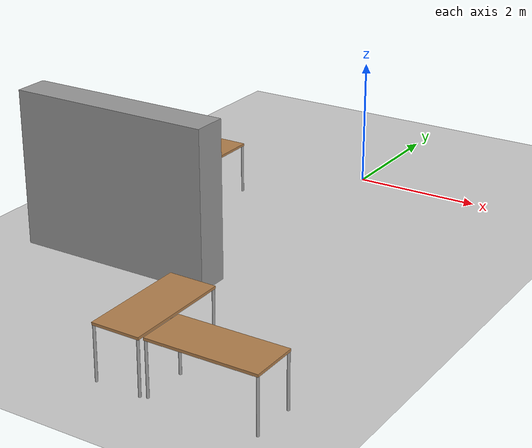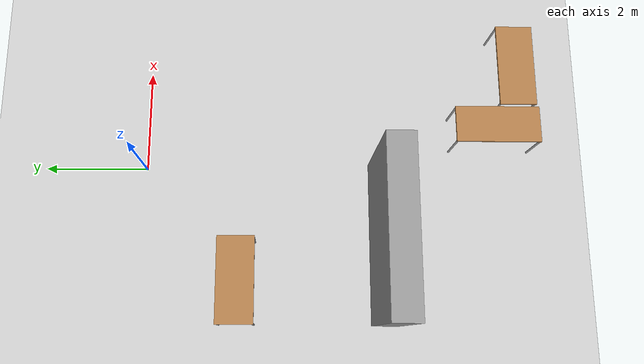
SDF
<sdf version="1.6">
 <world name="Clf Furnished">
  <model name="ground_plane">
   <static>1</static>
   <link name="link">
    <collision name="collision">
     <geometry><plane><normal>0 0 1</normal><size>100 100</size></plane></geometry>
     <surface><friction><ode><mu>100</mu><mu2>50</mu2></ode></friction></surface>
    </collision>
    <visual name="visual">
     <cast_shadows>0</cast_shadows>
     <geometry><plane><normal>0 0 1</normal><size>100 100</size></plane></geometry>
     <material>
      <script><uri>file://media/materials/scripts/gazebo.material</uri><name>Gazebo/Grey</name></script>
     </material>
    </visual>
   </link>
  </model>
  <model name="clf_cabinet_1">
   <link name="link">
    <inertial>
     <mass>1</mass>
     <inertia>
      <ixx>0.166667</ixx>
      <ixy>0</ixy>
      <ixz>0</ixz>
      <iyy>0.166667</iyy>
      <iyz>0</iyz>
      <izz>0.166667</izz>
     </inertia>
    </inertial>
    <visual name="visual">
     <geometry><box><size>3.13719 0.522097 2.4</size></box></geometry>
     <material>
      <script><name>Gazebo/Grey</name><uri>file://media/materials/scripts/gazebo.material</uri></script>
      <ambient>0.3 0.3 0.3 1</ambient>
      <diffuse>0.7 0.7 0.7 1</diffuse>
      <specular>0.01 0.01 0.01 1</specular>
      <emissive>0 0 0 1</emissive>
     </material>
    </visual>
    <collision name="collision">
     <geometry><box><size>3.13719 0.522097 2.4</size></box></geometry>
     <surface>
      <friction>
       <ode><mu>1</mu><mu2>1</mu2><fdir1>0 0 0</fdir1><slip1>0</slip1><slip2>0</slip2></ode>
       <torsional>
        <coefficient>1</coefficient>
        <patch_radius>0</patch_radius>
        <surface_radius>0</surface_radius>
        <use_patch_radius>1</use_patch_radius>
        <ode><slip>0</slip></ode>
       </torsional>
      </friction>
      <bounce><restitution_coefficient>0</restitution_coefficient><threshold>1e+06</threshold></bounce>
      <contact>
       <collide_without_contact>0</collide_without_contact>
       <collide_without_contact_bitmask>1</collide_without_contact_bitmask>
       <collide_bitmask>1</collide_bitmask>
       <ode>
        <soft_cfm>0</soft_cfm>
        <soft_erp>0.2</soft_erp>
        <kp>1e+13</kp>
        <kd>1</kd>
        <max_vel>0.01</max_vel>
        <min_depth>0</min_depth>
       </ode>
       <bullet>
        <split_impulse>1</split_impulse>
        <split_impulse_penetration_threshold>-0.01</split_impulse_penetration_threshold>
        <soft_cfm>0</soft_cfm>
        <soft_erp>0.2</soft_erp>
        <kp>1e+13</kp>
        <kd>1</kd>
       </bullet>
      </contact>
     </surface>
    </collision>
   </link>
   <static>0</static>
   <pose>-1.42949 -4.63345 1.19998 -1e-06 -1.4e-05 0.000439</pose>
  </model>
  <model name="table_mod">
   <link name="link">
    <inertial>
     <inertia><ixx>1</ixx><ixy>0</ixy><ixz>0</ixz><iyy>1</iyy><iyz>0</iyz><izz>1</izz></inertia>
     <mass>1</mass>
    </inertial>
    <visual name="visual1">
     <pose>0 0 0.8 0 -0 0</pose>
     <geometry><box><size>1.6 0.7 0.04</size></box></geometry>
     <material>
      <script><uri>file://media/materials/scripts/gazebo.material</uri><name>Gazebo/Wood</name></script>
      <ambient>1 1 1 1</ambient>
      <diffuse>1 1 1 1</diffuse>
      <specular>0.2 0.2 0.2 1</specular>
      <emissive>0 0 0 1</emissive>
     </material>
    </visual>
    <visual name="front_right_leg">
     <pose>0.78 -0.33 0.4 0 -0 0</pose>
     <geometry><cylinder><radius>0.02</radius><length>0.8</length></cylinder></geometry>
     <material>
      <script><uri>file://media/materials/scripts/gazebo.material</uri><name>Gazebo/Grey</name></script>
      <ambient>0.3 0.3 0.3 1</ambient>
      <diffuse>0.7 0.7 0.7 1</diffuse>
      <specular>0.01 0.01 0.01 1</specular>
      <emissive>0 0 0 1</emissive>
     </material>
    </visual>
    <visual name="front_left_leg">
     <pose>0.78 0.33 0.4 0 -0 0</pose>
     <geometry><cylinder><radius>0.02</radius><length>0.8</length></cylinder></geometry>
     <material>
      <script><uri>file://media/materials/scripts/gazebo.material</uri><name>Gazebo/Grey</name></script>
      <ambient>0.3 0.3 0.3 1</ambient>
      <diffuse>0.7 0.7 0.7 1</diffuse>
      <specular>0.01 0.01 0.01 1</specular>
      <emissive>0 0 0 1</emissive>
     </material>
    </visual>
    <visual name="back_left_leg">
     <pose>-0.78 0.33 0.4 0 -0 0</pose>
     <geometry><cylinder><radius>0.02</radius><length>0.8</length></cylinder></geometry>
     <material>
      <script><uri>file://media/materials/scripts/gazebo.material</uri><name>Gazebo/Grey</name></script>
      <ambient>0.3 0.3 0.3 1</ambient>
      <diffuse>0.7 0.7 0.7 1</diffuse>
      <specular>0.01 0.01 0.01 1</specular>
      <emissive>0 0 0 1</emissive>
     </material>
    </visual>
    <visual name="back_right_leg">
     <pose>-0.78 -0.33 0.4 0 -0 0</pose>
     <geometry><cylinder><radius>0.02</radius><length>0.8</length></cylinder></geometry>
     <material>
      <script><uri>file://media/materials/scripts/gazebo.material</uri><name>Gazebo/Grey</name></script>
      <ambient>0.3 0.3 0.3 1</ambient>
      <diffuse>0.7 0.7 0.7 1</diffuse>
      <specular>0.01 0.01 0.01 1</specular>
      <emissive>0 0 0 1</emissive>
     </material>
    </visual>
    <collision name="surface">
     <pose>0 0 0.8 0 -0 0</pose>
     <geometry><box><size>1.6 0.7 0.03</size></box></geometry>
     <surface>
      <friction>
       <ode><mu>0.6</mu><mu2>0.6</mu2><fdir1>0 0 0</fdir1><slip1>0</slip1><slip2>0</slip2></ode>
       <torsional>
        <coefficient>1</coefficient>
        <patch_radius>0</patch_radius>
        <surface_radius>0</surface_radius>
        <use_patch_radius>1</use_patch_radius>
        <ode><slip>0</slip></ode>
       </torsional>
      </friction>
      <bounce><restitution_coefficient>0</restitution_coefficient><threshold>1e+06</threshold></bounce>
      <contact>
       <collide_without_contact>0</collide_without_contact>
       <collide_without_contact_bitmask>1</collide_without_contact_bitmask>
       <collide_bitmask>1</collide_bitmask>
       <ode>
        <soft_cfm>0</soft_cfm>
        <soft_erp>0.2</soft_erp>
        <kp>1e+13</kp>
        <kd>1</kd>
        <max_vel>0.01</max_vel>
        <min_depth>0</min_depth>
       </ode>
       <bullet>
        <split_impulse>1</split_impulse>
        <split_impulse_penetration_threshold>-0.01</split_impulse_penetration_threshold>
        <soft_cfm>0</soft_cfm>
        <soft_erp>0.2</soft_erp>
        <kp>1e+13</kp>
        <kd>1</kd>
       </bullet>
      </contact>
     </surface>
    </collision>
    <collision name="front_left_leg">
     <pose>0.78 0.33 0.4 0 -0 0</pose>
     <geometry><cylinder><radius>0.02</radius><length>0.8</length></cylinder></geometry>
     <surface>
      <friction>
       <ode><mu>1</mu><mu2>1</mu2><fdir1>0 0 0</fdir1><slip1>0</slip1><slip2>0</slip2></ode>
       <torsional>
        <coefficient>1</coefficient>
        <patch_radius>0</patch_radius>
        <surface_radius>0</surface_radius>
        <use_patch_radius>1</use_patch_radius>
        <ode><slip>0</slip></ode>
       </torsional>
      </friction>
      <bounce><restitution_coefficient>0</restitution_coefficient><threshold>1e+06</threshold></bounce>
      <contact>
       <collide_without_contact>0</collide_without_contact>
       <collide_without_contact_bitmask>1</collide_without_contact_bitmask>
       <collide_bitmask>1</collide_bitmask>
       <ode>
        <soft_cfm>0</soft_cfm>
        <soft_erp>0.2</soft_erp>
        <kp>1e+13</kp>
        <kd>1</kd>
        <max_vel>0.01</max_vel>
        <min_depth>0</min_depth>
       </ode>
       <bullet>
        <split_impulse>1</split_impulse>
        <split_impulse_penetration_threshold>-0.01</split_impulse_penetration_threshold>
        <soft_cfm>0</soft_cfm>
        <soft_erp>0.2</soft_erp>
        <kp>1e+13</kp>
        <kd>1</kd>
       </bullet>
      </contact>
     </surface>
    </collision>
    <collision name="front_right_leg">
     <pose>0.78 -0.33 0.4 0 -0 0</pose>
     <geometry><cylinder><radius>0.02</radius><length>0.8</length></cylinder></geometry>
     <surface>
      <friction>
       <ode><mu>1</mu><mu2>1</mu2><fdir1>0 0 0</fdir1><slip1>0</slip1><slip2>0</slip2></ode>
       <torsional>
        <coefficient>1</coefficient>
        <patch_radius>0</patch_radius>
        <surface_radius>0</surface_radius>
        <use_patch_radius>1</use_patch_radius>
        <ode><slip>0</slip></ode>
       </torsional>
      </friction>
      <bounce><restitution_coefficient>0</restitution_coefficient><threshold>1e+06</threshold></bounce>
      <contact>
       <collide_without_contact>0</collide_without_contact>
       <collide_without_contact_bitmask>1</collide_without_contact_bitmask>
       <collide_bitmask>1</collide_bitmask>
       <ode>
        <soft_cfm>0</soft_cfm>
        <soft_erp>0.2</soft_erp>
        <kp>1e+13</kp>
        <kd>1</kd>
        <max_vel>0.01</max_vel>
        <min_depth>0</min_depth>
       </ode>
       <bullet>
        <split_impulse>1</split_impulse>
        <split_impulse_penetration_threshold>-0.01</split_impulse_penetration_threshold>
        <soft_cfm>0</soft_cfm>
        <soft_erp>0.2</soft_erp>
        <kp>1e+13</kp>
        <kd>1</kd>
       </bullet>
      </contact>
     </surface>
    </collision>
    <collision name="back_right_leg">
     <pose>-0.78 -0.33 0.4 0 -0 0</pose>
     <geometry><cylinder><radius>0.02</radius><length>0.8</length></cylinder></geometry>
     <surface>
      <friction>
       <ode><mu>1</mu><mu2>1</mu2><fdir1>0 0 0</fdir1><slip1>0</slip1><slip2>0</slip2></ode>
       <torsional>
        <coefficient>1</coefficient>
        <patch_radius>0</patch_radius>
        <surface_radius>0</surface_radius>
        <use_patch_radius>1</use_patch_radius>
        <ode><slip>0</slip></ode>
       </torsional>
      </friction>
      <bounce><restitution_coefficient>0</restitution_coefficient><threshold>1e+06</threshold></bounce>
      <contact>
       <collide_without_contact>0</collide_without_contact>
       <collide_without_contact_bitmask>1</collide_without_contact_bitmask>
       <collide_bitmask>1</collide_bitmask>
       <ode>
        <soft_cfm>0</soft_cfm>
        <soft_erp>0.2</soft_erp>
        <kp>1e+13</kp>
        <kd>1</kd>
        <max_vel>0.01</max_vel>
        <min_depth>0</min_depth>
       </ode>
       <bullet>
        <split_impulse>1</split_impulse>
        <split_impulse_penetration_threshold>-0.01</split_impulse_penetration_threshold>
        <soft_cfm>0</soft_cfm>
        <soft_erp>0.2</soft_erp>
        <kp>1e+13</kp>
        <kd>1</kd>
       </bullet>
      </contact>
     </surface>
    </collision>
    <collision name="back_left_leg">
     <pose>-0.78 0.33 0.4 0 -0 0</pose>
     <geometry><cylinder><radius>0.02</radius><length>0.8</length></cylinder></geometry>
     <surface>
      <friction>
       <ode><mu>1</mu><mu2>1</mu2><fdir1>0 0 0</fdir1><slip1>0</slip1><slip2>0</slip2></ode>
       <torsional>
        <coefficient>1</coefficient>
        <patch_radius>0</patch_radius>
        <surface_radius>0</surface_radius>
        <use_patch_radius>1</use_patch_radius>
        <ode><slip>0</slip></ode>
       </torsional>
      </friction>
      <bounce><restitution_coefficient>0</restitution_coefficient><threshold>1e+06</threshold></bounce>
      <contact>
       <collide_without_contact>0</collide_without_contact>
       <collide_without_contact_bitmask>1</collide_without_contact_bitmask>
       <collide_bitmask>1</collide_bitmask>
       <ode>
        <soft_cfm>0</soft_cfm>
        <soft_erp>0.2</soft_erp>
        <kp>1e+13</kp>
        <kd>1</kd>
        <max_vel>0.01</max_vel>
        <min_depth>0</min_depth>
       </ode>
       <bullet>
        <split_impulse>1</split_impulse>
        <split_impulse_penetration_threshold>-0.01</split_impulse_penetration_threshold>
        <soft_cfm>0</soft_cfm>
        <soft_erp>0.2</soft_erp>
        <kp>1e+13</kp>
        <kd>1</kd>
       </bullet>
      </contact>
     </surface>
    </collision>
   </link>
   <static>0</static>
   <pose>-2.20978 -1.82153 -2.9e-05 1e-06 1e-06 -2e-06</pose>
  </model>
  <model name="table_mod_5">
   <link name="link">
    <inertial>
     <inertia><ixx>1</ixx><ixy>0</ixy><ixz>0</ixz><iyy>1</iyy><iyz>0</iyz><izz>1</izz></inertia>
     <mass>1</mass>
    </inertial>
    <visual name="visual1">
     <pose>0 0 0.8 0 -0 0</pose>
     <geometry><box><size>1.6 0.7 0.04</size></box></geometry>
     <material>
      <script><uri>file://media/materials/scripts/gazebo.material</uri><name>Gazebo/Wood</name></script>
      <ambient>1 1 1 1</ambient>
      <diffuse>1 1 1 1</diffuse>
      <specular>0.2 0.2 0.2 1</specular>
      <emissive>0 0 0 1</emissive>
     </material>
    </visual>
    <visual name="front_right_leg">
     <pose>0.78 -0.33 0.4 0 -0 0</pose>
     <geometry><cylinder><radius>0.02</radius><length>0.8</length></cylinder></geometry>
     <material>
      <script><uri>file://media/materials/scripts/gazebo.material</uri><name>Gazebo/Grey</name></script>
      <ambient>0.3 0.3 0.3 1</ambient>
      <diffuse>0.7 0.7 0.7 1</diffuse>
      <specular>0.01 0.01 0.01 1</specular>
      <emissive>0 0 0 1</emissive>
     </material>
    </visual>
    <visual name="front_left_leg">
     <pose>0.78 0.33 0.4 0 -0 0</pose>
     <geometry><cylinder><radius>0.02</radius><length>0.8</length></cylinder></geometry>
     <material>
      <script><uri>file://media/materials/scripts/gazebo.material</uri><name>Gazebo/Grey</name></script>
      <ambient>0.3 0.3 0.3 1</ambient>
      <diffuse>0.7 0.7 0.7 1</diffuse>
      <specular>0.01 0.01 0.01 1</specular>
      <emissive>0 0 0 1</emissive>
     </material>
    </visual>
    <visual name="back_left_leg">
     <pose>-0.78 0.33 0.4 0 -0 0</pose>
     <geometry><cylinder><radius>0.02</radius><length>0.8</length></cylinder></geometry>
     <material>
      <script><uri>file://media/materials/scripts/gazebo.material</uri><name>Gazebo/Grey</name></script>
      <ambient>0.3 0.3 0.3 1</ambient>
      <diffuse>0.7 0.7 0.7 1</diffuse>
      <specular>0.01 0.01 0.01 1</specular>
      <emissive>0 0 0 1</emissive>
     </material>
    </visual>
    <visual name="back_right_leg">
     <pose>-0.78 -0.33 0.4 0 -0 0</pose>
     <geometry><cylinder><radius>0.02</radius><length>0.8</length></cylinder></geometry>
     <material>
      <script><uri>file://media/materials/scripts/gazebo.material</uri><name>Gazebo/Grey</name></script>
      <ambient>0.3 0.3 0.3 1</ambient>
      <diffuse>0.7 0.7 0.7 1</diffuse>
      <specular>0.01 0.01 0.01 1</specular>
      <emissive>0 0 0 1</emissive>
     </material>
    </visual>
    <collision name="surface">
     <pose>0 0 0.8 0 -0 0</pose>
     <geometry><box><size>1.6 0.7 0.03</size></box></geometry>
     <surface>
      <friction>
       <ode><mu>0.6</mu><mu2>0.6</mu2><fdir1>0 0 0</fdir1><slip1>0</slip1><slip2>0</slip2></ode>
       <torsional>
        <coefficient>1</coefficient>
        <patch_radius>0</patch_radius>
        <surface_radius>0</surface_radius>
        <use_patch_radius>1</use_patch_radius>
        <ode><slip>0</slip></ode>
       </torsional>
      </friction>
      <bounce><restitution_coefficient>0</restitution_coefficient><threshold>1e+06</threshold></bounce>
      <contact>
       <collide_without_contact>0</collide_without_contact>
       <collide_without_contact_bitmask>1</collide_without_contact_bitmask>
       <collide_bitmask>1</collide_bitmask>
       <ode>
        <soft_cfm>0</soft_cfm>
        <soft_erp>0.2</soft_erp>
        <kp>1e+13</kp>
        <kd>1</kd>
        <max_vel>0.01</max_vel>
        <min_depth>0</min_depth>
       </ode>
       <bullet>
        <split_impulse>1</split_impulse>
        <split_impulse_penetration_threshold>-0.01</split_impulse_penetration_threshold>
        <soft_cfm>0</soft_cfm>
        <soft_erp>0.2</soft_erp>
        <kp>1e+13</kp>
        <kd>1</kd>
       </bullet>
      </contact>
     </surface>
    </collision>
    <collision name="front_left_leg">
     <pose>0.78 0.33 0.4 0 -0 0</pose>
     <geometry><cylinder><radius>0.02</radius><length>0.8</length></cylinder></geometry>
     <surface>
      <friction>
       <ode><mu>1</mu><mu2>1</mu2><fdir1>0 0 0</fdir1><slip1>0</slip1><slip2>0</slip2></ode>
       <torsional>
        <coefficient>1</coefficient>
        <patch_radius>0</patch_radius>
        <surface_radius>0</surface_radius>
        <use_patch_radius>1</use_patch_radius>
        <ode><slip>0</slip></ode>
       </torsional>
      </friction>
      <bounce><restitution_coefficient>0</restitution_coefficient><threshold>1e+06</threshold></bounce>
      <contact>
       <collide_without_contact>0</collide_without_contact>
       <collide_without_contact_bitmask>1</collide_without_contact_bitmask>
       <collide_bitmask>1</collide_bitmask>
       <ode>
        <soft_cfm>0</soft_cfm>
        <soft_erp>0.2</soft_erp>
        <kp>1e+13</kp>
        <kd>1</kd>
        <max_vel>0.01</max_vel>
        <min_depth>0</min_depth>
       </ode>
       <bullet>
        <split_impulse>1</split_impulse>
        <split_impulse_penetration_threshold>-0.01</split_impulse_penetration_threshold>
        <soft_cfm>0</soft_cfm>
        <soft_erp>0.2</soft_erp>
        <kp>1e+13</kp>
        <kd>1</kd>
       </bullet>
      </contact>
     </surface>
    </collision>
    <collision name="front_right_leg">
     <pose>0.78 -0.33 0.4 0 -0 0</pose>
     <geometry><cylinder><radius>0.02</radius><length>0.8</length></cylinder></geometry>
     <surface>
      <friction>
       <ode><mu>1</mu><mu2>1</mu2><fdir1>0 0 0</fdir1><slip1>0</slip1><slip2>0</slip2></ode>
       <torsional>
        <coefficient>1</coefficient>
        <patch_radius>0</patch_radius>
        <surface_radius>0</surface_radius>
        <use_patch_radius>1</use_patch_radius>
        <ode><slip>0</slip></ode>
       </torsional>
      </friction>
      <bounce><restitution_coefficient>0</restitution_coefficient><threshold>1e+06</threshold></bounce>
      <contact>
       <collide_without_contact>0</collide_without_contact>
       <collide_without_contact_bitmask>1</collide_without_contact_bitmask>
       <collide_bitmask>1</collide_bitmask>
       <ode>
        <soft_cfm>0</soft_cfm>
        <soft_erp>0.2</soft_erp>
        <kp>1e+13</kp>
        <kd>1</kd>
        <max_vel>0.01</max_vel>
        <min_depth>0</min_depth>
       </ode>
       <bullet>
        <split_impulse>1</split_impulse>
        <split_impulse_penetration_threshold>-0.01</split_impulse_penetration_threshold>
        <soft_cfm>0</soft_cfm>
        <soft_erp>0.2</soft_erp>
        <kp>1e+13</kp>
        <kd>1</kd>
       </bullet>
      </contact>
     </surface>
    </collision>
    <collision name="back_right_leg">
     <pose>-0.78 -0.33 0.4 0 -0 0</pose>
     <geometry><cylinder><radius>0.02</radius><length>0.8</length></cylinder></geometry>
     <surface>
      <friction>
       <ode><mu>1</mu><mu2>1</mu2><fdir1>0 0 0</fdir1><slip1>0</slip1><slip2>0</slip2></ode>
       <torsional>
        <coefficient>1</coefficient>
        <patch_radius>0</patch_radius>
        <surface_radius>0</surface_radius>
        <use_patch_radius>1</use_patch_radius>
        <ode><slip>0</slip></ode>
       </torsional>
      </friction>
      <bounce><restitution_coefficient>0</restitution_coefficient><threshold>1e+06</threshold></bounce>
      <contact>
       <collide_without_contact>0</collide_without_contact>
       <collide_without_contact_bitmask>1</collide_without_contact_bitmask>
       <collide_bitmask>1</collide_bitmask>
       <ode>
        <soft_cfm>0</soft_cfm>
        <soft_erp>0.2</soft_erp>
        <kp>1e+13</kp>
        <kd>1</kd>
        <max_vel>0.01</max_vel>
        <min_depth>0</min_depth>
       </ode>
       <bullet>
        <split_impulse>1</split_impulse>
        <split_impulse_penetration_threshold>-0.01</split_impulse_penetration_threshold>
        <soft_cfm>0</soft_cfm>
        <soft_erp>0.2</soft_erp>
        <kp>1e+13</kp>
        <kd>1</kd>
       </bullet>
      </contact>
     </surface>
    </collision>
    <collision name="back_left_leg">
     <pose>-0.78 0.33 0.4 0 -0 0</pose>
     <geometry><cylinder><radius>0.02</radius><length>0.8</length></cylinder></geometry>
     <surface>
      <friction>
       <ode><mu>1</mu><mu2>1</mu2><fdir1>0 0 0</fdir1><slip1>0</slip1><slip2>0</slip2></ode>
       <torsional>
        <coefficient>1</coefficient>
        <patch_radius>0</patch_radius>
        <surface_radius>0</surface_radius>
        <use_patch_radius>1</use_patch_radius>
        <ode><slip>0</slip></ode>
       </torsional>
      </friction>
      <bounce><restitution_coefficient>0</restitution_coefficient><threshold>1e+06</threshold></bounce>
      <contact>
       <collide_without_contact>0</collide_without_contact>
       <collide_without_contact_bitmask>1</collide_without_contact_bitmask>
       <collide_bitmask>1</collide_bitmask>
       <ode>
        <soft_cfm>0</soft_cfm>
        <soft_erp>0.2</soft_erp>
        <kp>1e+13</kp>
        <kd>1</kd>
        <max_vel>0.01</max_vel>
        <min_depth>0</min_depth>
       </ode>
       <bullet>
        <split_impulse>1</split_impulse>
        <split_impulse_penetration_threshold>-0.01</split_impulse_penetration_threshold>
        <soft_cfm>0</soft_cfm>
        <soft_erp>0.2</soft_erp>
        <kp>1e+13</kp>
        <kd>1</kd>
       </bullet>
      </contact>
     </surface>
    </collision>
   </link>
   <static>0</static>
   <pose>1.96446 -7.18244 -2e-06 1e-06 1e-06 6.4e-05</pose>
  </model>
  <model name="table_mod_7">
   <link name="link">
    <inertial>
     <inertia><ixx>1</ixx><ixy>0</ixy><ixz>0</ixz><iyy>1</iyy><iyz>0</iyz><izz>1</izz></inertia>
     <mass>1</mass>
    </inertial>
    <visual name="visual1">
     <pose>0 0 0.8 0 -0 0</pose>
     <geometry><box><size>1.6 0.7 0.04</size></box></geometry>
     <material>
      <script><uri>file://media/materials/scripts/gazebo.material</uri><name>Gazebo/Wood</name></script>
      <ambient>1 1 1 1</ambient>
      <diffuse>1 1 1 1</diffuse>
      <specular>0.2 0.2 0.2 1</specular>
      <emissive>0 0 0 1</emissive>
     </material>
    </visual>
    <visual name="front_right_leg">
     <pose>0.78 -0.33 0.4 0 -0 0</pose>
     <geometry><cylinder><radius>0.02</radius><length>0.8</length></cylinder></geometry>
     <material>
      <script><uri>file://media/materials/scripts/gazebo.material</uri><name>Gazebo/Grey</name></script>
      <ambient>0.3 0.3 0.3 1</ambient>
      <diffuse>0.7 0.7 0.7 1</diffuse>
      <specular>0.01 0.01 0.01 1</specular>
      <emissive>0 0 0 1</emissive>
     </material>
    </visual>
    <visual name="front_left_leg">
     <pose>0.78 0.33 0.4 0 -0 0</pose>
     <geometry><cylinder><radius>0.02</radius><length>0.8</length></cylinder></geometry>
     <material>
      <script><uri>file://media/materials/scripts/gazebo.material</uri><name>Gazebo/Grey</name></script>
      <ambient>0.3 0.3 0.3 1</ambient>
      <diffuse>0.7 0.7 0.7 1</diffuse>
      <specular>0.01 0.01 0.01 1</specular>
      <emissive>0 0 0 1</emissive>
     </material>
    </visual>
    <visual name="back_left_leg">
     <pose>-0.78 0.33 0.4 0 -0 0</pose>
     <geometry><cylinder><radius>0.02</radius><length>0.8</length></cylinder></geometry>
     <material>
      <script><uri>file://media/materials/scripts/gazebo.material</uri><name>Gazebo/Grey</name></script>
      <ambient>0.3 0.3 0.3 1</ambient>
      <diffuse>0.7 0.7 0.7 1</diffuse>
      <specular>0.01 0.01 0.01 1</specular>
      <emissive>0 0 0 1</emissive>
     </material>
    </visual>
    <visual name="back_right_leg">
     <pose>-0.78 -0.33 0.4 0 -0 0</pose>
     <geometry><cylinder><radius>0.02</radius><length>0.8</length></cylinder></geometry>
     <material>
      <script><uri>file://media/materials/scripts/gazebo.material</uri><name>Gazebo/Grey</name></script>
      <ambient>0.3 0.3 0.3 1</ambient>
      <diffuse>0.7 0.7 0.7 1</diffuse>
      <specular>0.01 0.01 0.01 1</specular>
      <emissive>0 0 0 1</emissive>
     </material>
    </visual>
    <collision name="surface">
     <pose>0 0 0.8 0 -0 0</pose>
     <geometry><box><size>1.6 0.7 0.03</size></box></geometry>
     <surface>
      <friction>
       <ode><mu>0.6</mu><mu2>0.6</mu2><fdir1>0 0 0</fdir1><slip1>0</slip1><slip2>0</slip2></ode>
       <torsional>
        <coefficient>1</coefficient>
        <patch_radius>0</patch_radius>
        <surface_radius>0</surface_radius>
        <use_patch_radius>1</use_patch_radius>
        <ode><slip>0</slip></ode>
       </torsional>
      </friction>
      <bounce><restitution_coefficient>0</restitution_coefficient><threshold>1e+06</threshold></bounce>
      <contact>
       <collide_without_contact>0</collide_without_contact>
       <collide_without_contact_bitmask>1</collide_without_contact_bitmask>
       <collide_bitmask>1</collide_bitmask>
       <ode>
        <soft_cfm>0</soft_cfm>
        <soft_erp>0.2</soft_erp>
        <kp>1e+13</kp>
        <kd>1</kd>
        <max_vel>0.01</max_vel>
        <min_depth>0</min_depth>
       </ode>
       <bullet>
        <split_impulse>1</split_impulse>
        <split_impulse_penetration_threshold>-0.01</split_impulse_penetration_threshold>
        <soft_cfm>0</soft_cfm>
        <soft_erp>0.2</soft_erp>
        <kp>1e+13</kp>
        <kd>1</kd>
       </bullet>
      </contact>
     </surface>
    </collision>
    <collision name="front_left_leg">
     <pose>0.78 0.33 0.4 0 -0 0</pose>
     <geometry><cylinder><radius>0.02</radius><length>0.8</length></cylinder></geometry>
     <surface>
      <friction>
       <ode><mu>1</mu><mu2>1</mu2><fdir1>0 0 0</fdir1><slip1>0</slip1><slip2>0</slip2></ode>
       <torsional>
        <coefficient>1</coefficient>
        <patch_radius>0</patch_radius>
        <surface_radius>0</surface_radius>
        <use_patch_radius>1</use_patch_radius>
        <ode><slip>0</slip></ode>
       </torsional>
      </friction>
      <bounce><restitution_coefficient>0</restitution_coefficient><threshold>1e+06</threshold></bounce>
      <contact>
       <collide_without_contact>0</collide_without_contact>
       <collide_without_contact_bitmask>1</collide_without_contact_bitmask>
       <collide_bitmask>1</collide_bitmask>
       <ode>
        <soft_cfm>0</soft_cfm>
        <soft_erp>0.2</soft_erp>
        <kp>1e+13</kp>
        <kd>1</kd>
        <max_vel>0.01</max_vel>
        <min_depth>0</min_depth>
       </ode>
       <bullet>
        <split_impulse>1</split_impulse>
        <split_impulse_penetration_threshold>-0.01</split_impulse_penetration_threshold>
        <soft_cfm>0</soft_cfm>
        <soft_erp>0.2</soft_erp>
        <kp>1e+13</kp>
        <kd>1</kd>
       </bullet>
      </contact>
     </surface>
    </collision>
    <collision name="front_right_leg">
     <pose>0.78 -0.33 0.4 0 -0 0</pose>
     <geometry><cylinder><radius>0.02</radius><length>0.8</length></cylinder></geometry>
     <surface>
      <friction>
       <ode><mu>1</mu><mu2>1</mu2><fdir1>0 0 0</fdir1><slip1>0</slip1><slip2>0</slip2></ode>
       <torsional>
        <coefficient>1</coefficient>
        <patch_radius>0</patch_radius>
        <surface_radius>0</surface_radius>
        <use_patch_radius>1</use_patch_radius>
        <ode><slip>0</slip></ode>
       </torsional>
      </friction>
      <bounce><restitution_coefficient>0</restitution_coefficient><threshold>1e+06</threshold></bounce>
      <contact>
       <collide_without_contact>0</collide_without_contact>
       <collide_without_contact_bitmask>1</collide_without_contact_bitmask>
       <collide_bitmask>1</collide_bitmask>
       <ode>
        <soft_cfm>0</soft_cfm>
        <soft_erp>0.2</soft_erp>
        <kp>1e+13</kp>
        <kd>1</kd>
        <max_vel>0.01</max_vel>
        <min_depth>0</min_depth>
       </ode>
       <bullet>
        <split_impulse>1</split_impulse>
        <split_impulse_penetration_threshold>-0.01</split_impulse_penetration_threshold>
        <soft_cfm>0</soft_cfm>
        <soft_erp>0.2</soft_erp>
        <kp>1e+13</kp>
        <kd>1</kd>
       </bullet>
      </contact>
     </surface>
    </collision>
    <collision name="back_right_leg">
     <pose>-0.78 -0.33 0.4 0 -0 0</pose>
     <geometry><cylinder><radius>0.02</radius><length>0.8</length></cylinder></geometry>
     <surface>
      <friction>
       <ode><mu>1</mu><mu2>1</mu2><fdir1>0 0 0</fdir1><slip1>0</slip1><slip2>0</slip2></ode>
       <torsional>
        <coefficient>1</coefficient>
        <patch_radius>0</patch_radius>
        <surface_radius>0</surface_radius>
        <use_patch_radius>1</use_patch_radius>
        <ode><slip>0</slip></ode>
       </torsional>
      </friction>
      <bounce><restitution_coefficient>0</restitution_coefficient><threshold>1e+06</threshold></bounce>
      <contact>
       <collide_without_contact>0</collide_without_contact>
       <collide_without_contact_bitmask>1</collide_without_contact_bitmask>
       <collide_bitmask>1</collide_bitmask>
       <ode>
        <soft_cfm>0</soft_cfm>
        <soft_erp>0.2</soft_erp>
        <kp>1e+13</kp>
        <kd>1</kd>
        <max_vel>0.01</max_vel>
        <min_depth>0</min_depth>
       </ode>
       <bullet>
        <split_impulse>1</split_impulse>
        <split_impulse_penetration_threshold>-0.01</split_impulse_penetration_threshold>
        <soft_cfm>0</soft_cfm>
        <soft_erp>0.2</soft_erp>
        <kp>1e+13</kp>
        <kd>1</kd>
       </bullet>
      </contact>
     </surface>
    </collision>
    <collision name="back_left_leg">
     <pose>-0.78 0.33 0.4 0 -0 0</pose>
     <geometry><cylinder><radius>0.02</radius><length>0.8</length></cylinder></geometry>
     <surface>
      <friction>
       <ode><mu>1</mu><mu2>1</mu2><fdir1>0 0 0</fdir1><slip1>0</slip1><slip2>0</slip2></ode>
       <torsional>
        <coefficient>1</coefficient>
        <patch_radius>0</patch_radius>
        <surface_radius>0</surface_radius>
        <use_patch_radius>1</use_patch_radius>
        <ode><slip>0</slip></ode>
       </torsional>
      </friction>
      <bounce><restitution_coefficient>0</restitution_coefficient><threshold>1e+06</threshold></bounce>
      <contact>
       <collide_without_contact>0</collide_without_contact>
       <collide_without_contact_bitmask>1</collide_without_contact_bitmask>
       <collide_bitmask>1</collide_bitmask>
       <ode>
        <soft_cfm>0</soft_cfm>
        <soft_erp>0.2</soft_erp>
        <kp>1e+13</kp>
        <kd>1</kd>
        <max_vel>0.01</max_vel>
        <min_depth>0</min_depth>
       </ode>
       <bullet>
        <split_impulse>1</split_impulse>
        <split_impulse_penetration_threshold>-0.01</split_impulse_penetration_threshold>
        <soft_cfm>0</soft_cfm>
        <soft_erp>0.2</soft_erp>
        <kp>1e+13</kp>
        <kd>1</kd>
       </bullet>
      </contact>
     </surface>
    </collision>
   </link>
   <static>0</static>
   <pose>0.757972 -6.76648 0.003163 -0.009036 -0 -1.57079</pose>
  </model>
 </world>
</sdf>
